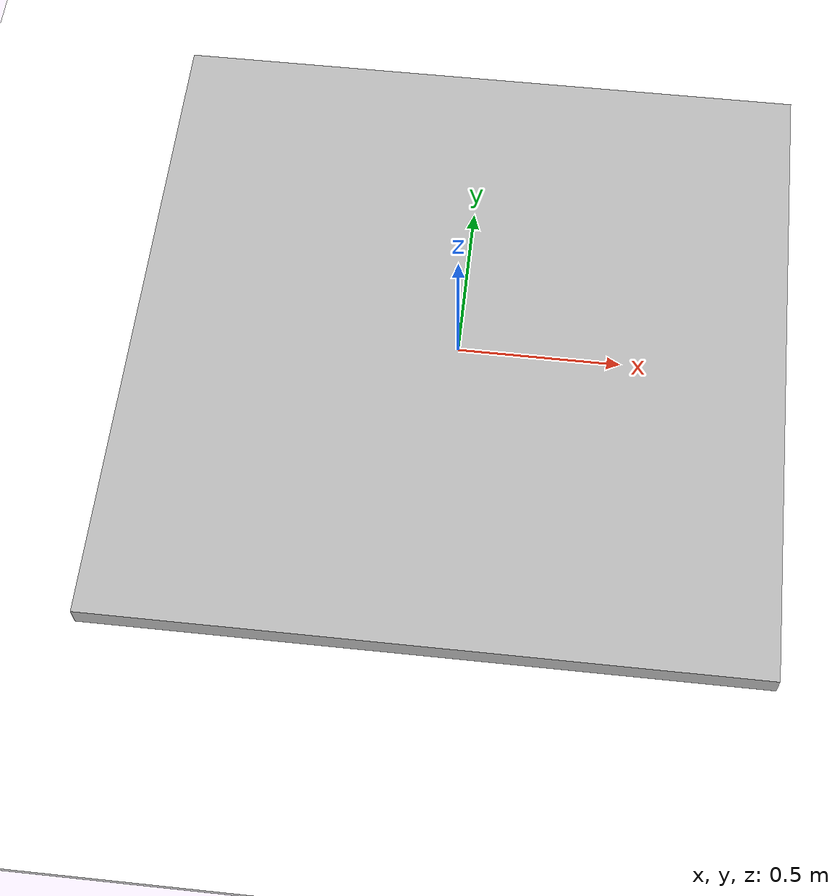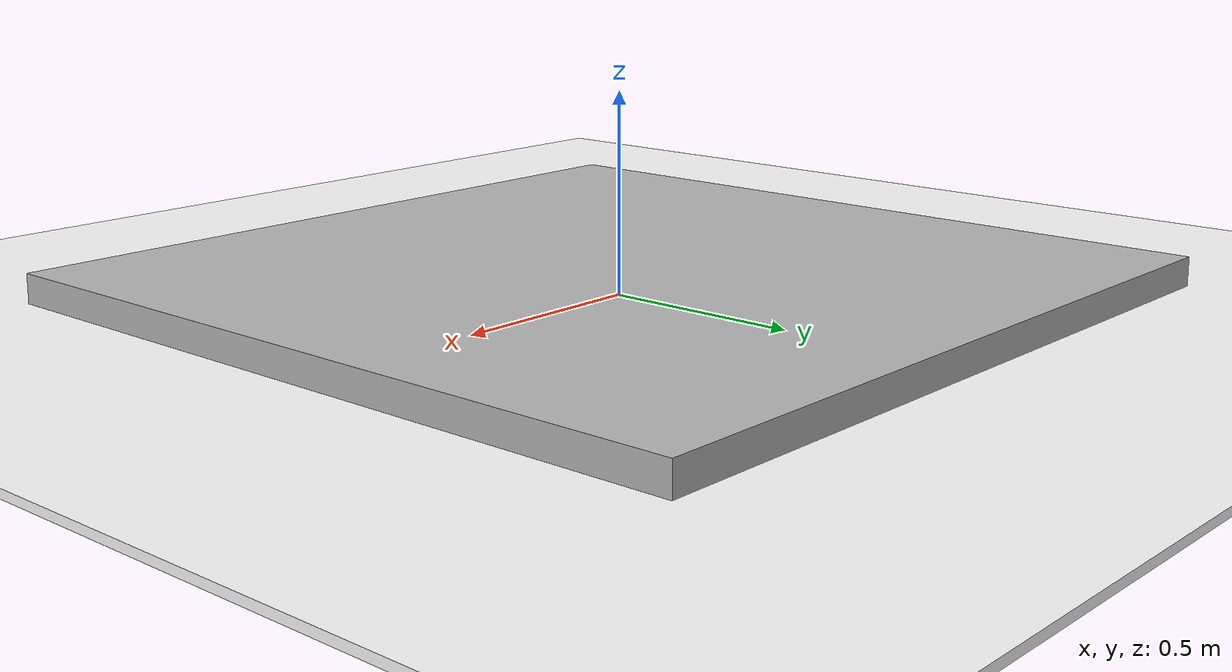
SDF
<?xml version="1.0" ?>
<sdf version="1.5">
  <world name="default">
    <!-- A global light source -->
    <include>
      <uri>model://sun</uri>
    </include>
    <!-- A ground plane -->
    <include>
      <uri>model://parquet_plane</uri>
       <pose>0 0 -0.01 0 0 0</pose>
    </include>
    <include>
      <uri>model://landing_station</uri>
      <pose>0 0 0 0 0 0</pose>
    </include>
    <physics name='default_physics' default='0' type='ode'>
      <gravity>0 0 -9.8066</gravity>
      <ode>
        <solver>
          <type>quick</type>
          <iters>10</iters>
          <sor>1.3</sor>
          <use_dynamic_moi_rescaling>0</use_dynamic_moi_rescaling>
        </solver>
        <constraints>
          <cfm>0</cfm>
          <erp>0.2</erp>
          <contact_max_correcting_vel>100</contact_max_correcting_vel>
          <contact_surface_layer>0.001</contact_surface_layer>
        </constraints>
      </ode>
      <max_step_size>0.004</max_step_size>
      <real_time_factor>1</real_time_factor>
      <real_time_update_rate>250</real_time_update_rate>
      <magnetic_field>6.0e-6 2.3e-5 -4.2e-5</magnetic_field>
    </physics>
  </world>
</sdf>

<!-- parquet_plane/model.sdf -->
<sdf version="1.10">
  <model name="parquet_plane">
    <static>true</static>
    <link name="link">
      <collision name="collision">
        <geometry>
          <box>
            <size>200 200 0.02</size>
          </box>
        </geometry>
      </collision>
      <visual name="visual">
        <cast_shadows>false</cast_shadows>
        <geometry>
          <box>
            <size>200 200 0.02</size>
          </box>
        </geometry>
        <material>
          <ambient>0.8 0.8 0.8 1</ambient>
          <diffuse>1.0 1.0 1.0 1</diffuse>
          <specular>0.1 0.1 0.1 1</specular>
          <pbr>
            <metal>
              <albedo_map>model://parquet_plane/materials/textures/grass.png</albedo_map>
              <metalness>0.0</metalness>
              <roughness>0.9</roughness>
            </metal>
          </pbr>
        </material>
      </visual>
    </link>
  </model>
</sdf>

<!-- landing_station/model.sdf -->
<sdf version="1.4">
    <model name="landing_station">
      <pose>0 0 0  0 0 0</pose>
      <static>true</static>
      <link name="body">
        <visual name="visual">
          <geometry>
            <mesh><uri>model://landing_station/meshes/marker.obj</uri></mesh>
          </geometry>
        </visual>
      </link>
    </model>
</sdf>
